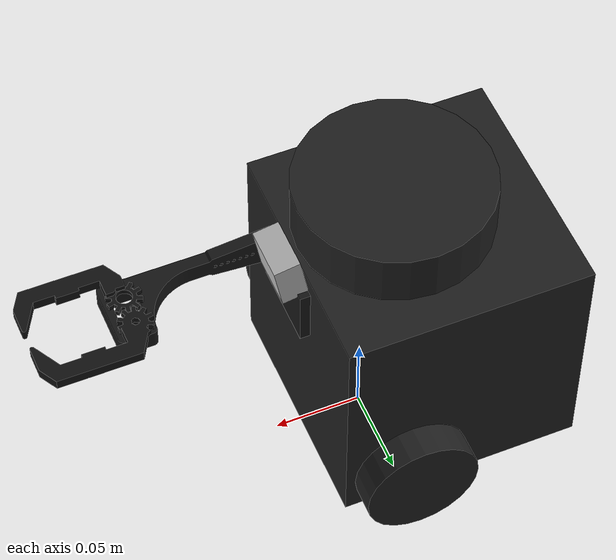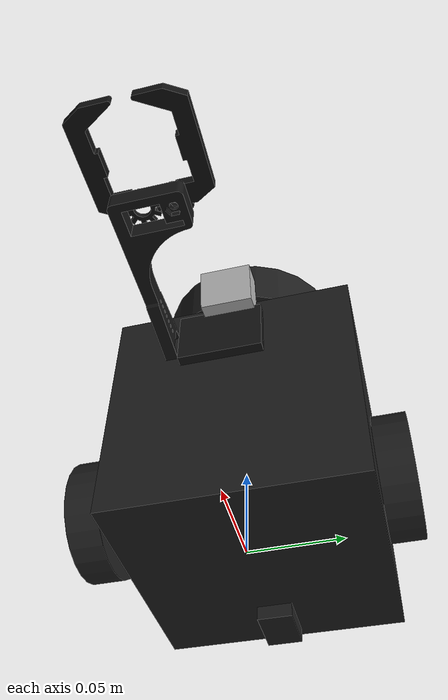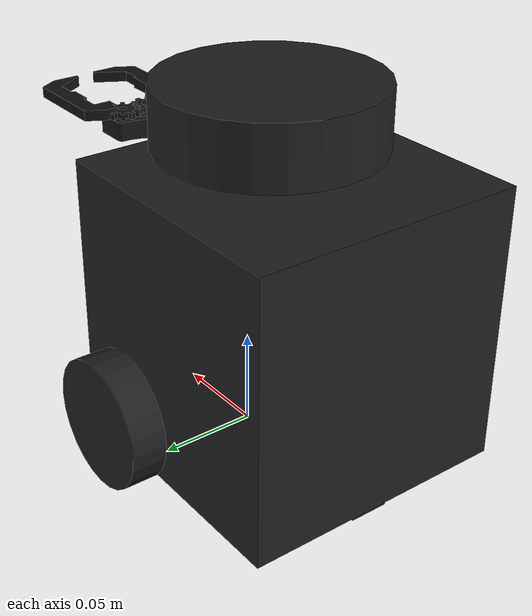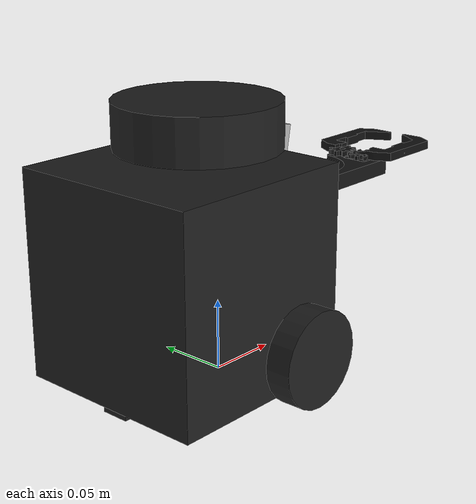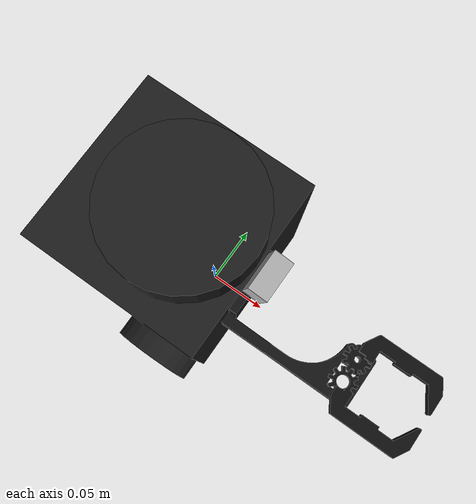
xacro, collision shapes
<?xml version="1.0" ?>
<robot name="mybot" xmlns:xacro="http://ros.org/wiki/xacro">
  <xacro:include filename="$(find mybot_description)/urdf/common_properties.xacro"/>
  <xacro:include filename="$(find mybot_description)/urdf/mybot.gazebo.xacro"/>

 <xacro:property name="width" value="0.2" />
  <xacro:property name="leglen" value="0.6" />
  <xacro:property name="polelen" value="0.2" />
  <xacro:property name="bodylen" value="0.6" />
  <xacro:property name="baselen" value="0.4" />
  <xacro:property name="wheeldiam" value="0.07" />
  <xacro:property name="pi" value="3.1415" />
  <xacro:property name="z" value="0.085" />

  <xacro:macro name="default_inertial" params="mass">
    <inertial>
      <mass value="${mass}" />
      <inertia ixx="1.0" ixy="0.0" ixz="0.0" iyy="1.0" iyz="0.0" izz="1.0" />
    </inertial>
  </xacro:macro>

  <link name="base_footprint"/>

  <joint name="base_joint" type="fixed">
    <parent link="base_footprint"/>
    <child link="base_link"/>
    <origin xyz="0.0 0.0 0.010" rpy="0 0 0"/>
  </joint>

  <link name="base_link">
    <visual>
      <origin xyz="-0.032 0 0.0" rpy="0 0 0"/>
      <geometry>
        <mesh filename="package://mybot_description/meshes/bases/burger_base.stl" scale="0.001 0.001 0.001"/>
      </geometry>
      <material name="light_black"/>
    </visual>

    <collision>
      <origin xyz="-0.032 0 0.070" rpy="0 0 0"/>
      <geometry>
        <box size="0.140 0.140 0.143"/>
      </geometry>
    </collision>

    <inertial>
      <origin xyz="0 0 0" rpy="0 0 0"/>
      <mass value="8.2573504e-01"/>
      <inertia ixx="2.2124416e-03" ixy="-1.2294101e-05" ixz="3.4938785e-05"
               iyy="2.1193702e-03" iyz="-5.0120904e-06"
               izz="2.0064271e-03" />
    </inertial>
  </link>

  <joint name="wheel_left_joint" type="continuous">
    <parent link="base_link"/>
    <child link="wheel_left_link"/>
    <origin xyz="0.0 0.08 0.023" rpy="-1.57 0 0"/>
    <axis xyz="0 0 1"/>
  </joint>

  <link name="wheel_left_link">
    <visual>
      <origin xyz="0 0 0" rpy="1.57 0 0"/>
      <geometry>
        <mesh filename="package://mybot_description/meshes/wheels/left_tire.stl" scale="0.001 0.001 0.001"/>
      </geometry>
      <material name="dark"/>
    </visual>

    <collision>
      <origin xyz="0 0 0" rpy="0 0 0"/>
      <geometry>
        <cylinder length="0.018" radius="0.033"/>
      </geometry>
    </collision>

    <inertial>
      <origin xyz="0 0 0" />
      <mass value="2.8498940e-02" />
      <inertia ixx="1.1175580e-05" ixy="-4.2369783e-11" ixz="-5.9381719e-09"
               iyy="1.1192413e-05" iyz="-1.4400107e-11"
               izz="2.0712558e-05" />
      </inertial>
  </link>

  <joint name="wheel_right_joint" type="continuous">
    <parent link="base_link"/>
    <child link="wheel_right_link"/>
    <origin xyz="0.0 -0.080 0.023" rpy="-1.57 0 0"/>
    <axis xyz="0 0 1"/>
  </joint>

  <link name="wheel_right_link">
    <visual>
      <origin xyz="0 0 0" rpy="1.57 0 0"/>
      <geometry>
        <mesh filename="package://mybot_description/meshes/wheels/right_tire.stl" scale="0.001 0.001 0.001"/>
      </geometry>
      <material name="dark"/>
    </visual>

    <collision>
      <origin xyz="0 0 0" rpy="0 0 0"/>
      <geometry>
        <cylinder length="0.018" radius="0.033"/>
      </geometry>
    </collision>

    <inertial>
      <origin xyz="0 0 0" />
      <mass value="2.8498940e-02" />
      <inertia ixx="1.1175580e-05" ixy="-4.2369783e-11" ixz="-5.9381719e-09"
               iyy="1.1192413e-05" iyz="-1.4400107e-11"
               izz="2.0712558e-05" />
      </inertial>
  </link>

  <joint name="caster_back_joint" type="fixed">
    <parent link="base_link"/>
    <child link="caster_back_link"/>
    <origin xyz="-0.081 0 -0.004" rpy="-1.57 0 0"/>
  </joint>

  <link name="caster_back_link">
    <collision>
      <origin xyz="0 0.001 0" rpy="0 0 0"/>
      <geometry>
        <box size="0.030 0.009 0.020"/>
      </geometry>
    </collision>

    <inertial>
      <origin xyz="0 0 0" />
      <mass value="0.005" />
      <inertia ixx="0.001" ixy="0.0" ixz="0.0"
               iyy="0.001" iyz="0.0"
               izz="0.001" />
    </inertial>
  </link>

  <joint name="imu_joint" type="fixed">
    <parent link="base_link"/>
    <child link="imu_link"/>
    <origin xyz="-0.032 0 0.068" rpy="0 0 0"/>
  </joint>

  <link name="imu_link"/>

  <joint name="scan_joint" type="fixed">
    <parent link="base_link"/>
    <child link="base_scan"/>
    <origin xyz="-0.032 0 0.172" rpy="0 0 0"/>
  </joint>

  <link name="base_scan">
    <visual>
      <origin xyz="0 0 0.0" rpy="0 0 0"/>
      <geometry>
        <mesh filename="package://mybot_description/meshes/sensors/lds.stl" scale="0.001 0.001 0.001"/>
      </geometry>
      <material name="dark"/>
    </visual>

    <collision>
      <origin xyz="0.015 0 -0.0065" rpy="0 0 0"/>
      <geometry>
        <cylinder length="0.0315" radius="0.055"/>
      </geometry>
    </collision>

    <inertial>
      <mass value="0.114" />
      <origin xyz="0 0 0" />
      <inertia ixx="0.001" ixy="0.0" ixz="0.0"
               iyy="0.001" iyz="0.0"
               izz="0.001" />
    </inertial>
  </link>

  <joint name="camera_joint" type="fixed">
    <origin xyz="0.040 -0.011 0.130" rpy="0 0.174 0"/>
    <parent link="base_link"/>
    <child link="camera_link"/>
  </joint>

  <link name="camera_link">
    <collision>
      <origin xyz="0.005 0.011 0.013" rpy="0 0 0"/>
      <geometry>
        <box size="0.015 0.030 0.027"/>
      </geometry>
    </collision>
  </link>

  <joint name="camera_rgb_joint" type="fixed">
    <origin xyz="0.003 0.011 0.009" rpy="0 0 0"/>
    <parent link="camera_link"/>
    <child link="camera_rgb_frame"/>
  </joint>
  <link name="camera_rgb_frame"/>

  <joint name="camera_rgb_optical_joint" type="fixed">
    <origin xyz="0 0 0" rpy="-1.57 0 -1.57"/>
    <parent link="camera_rgb_frame"/>
    <child link="camera_rgb_optical_frame"/>
  </joint>
  <link name="camera_rgb_optical_frame"/>

 <joint name="gripper_extension" type="revolute">
   <axis xyz="0 0 1"/>
    <limit effort="1000.0" lower="-1" upper="1" velocity="0.5"/>
    <parent link="base_link"/>
    <child link="gripper_pole"/>
    <limit effort="1000.0" lower="-0.38" upper="0" velocity="0.5"/>
      <origin rpy="0 0 0 " xyz="0 0 0"/>
  </joint>

  <link name="gripper_pole">
    <visual>
      <geometry>
        <mesh filename="package://mybot_description/meshes/sensors/arm.dae"/>
      </geometry>
      <origin rpy="0 0 0 " xyz="0 0 0"/>
    </visual>
    <collision>
      <geometry>
        <mesh filename="package://mybot_description/meshes/sensors/arm.dae"/>
      </geometry>
      <origin rpy="0 0 0 " xyz="0 0 0"/>
    </collision>
    <inertial>
      <mass value="0.00125"/>
      <inertia ixx="1.0" ixy="0.0" ixz="0.0" iyy="1.0" iyz="0.0" izz="1.0"/>
    </inertial>
  </link>

  <transmission name="gripper_extension_trans" type="SimpleTransmission">
    <type>transmission_interface/SimpleTransmission</type>
    <actuator name="gripper_extension_motor">
      <mechanicalReduction>1</mechanicalReduction>
    </actuator>
    <joint name="gripper_extension">
      <hardwareInterface>PositionJointInterface</hardwareInterface>
    </joint>
  </transmission>

  <joint name="left_gripper_joint" type="revolute">
    <axis xyz="0 0 1"/>
    <limit effort="1000.0" lower="0.0" upper="0.548" velocity="0.5"/>
      <origin rpy="0 0 0 " xyz="0 0 0"/>
    <parent link="gripper_pole"/>
    <child link="left_gripper"/>
  </joint>

  <link name="left_gripper">
    <visual>
    <origin rpy="0 0 0" xyz="0 0 0"/>
      <geometry>
        <mesh filename="package://mybot_description/meshes/sensors/esquerda.dae"/>
      </geometry>
    </visual>
    <collision>
      <geometry>
        <mesh filename="package://mybot_description/meshes/sensors/esquerda.dae"/>
      </geometry>
      <origin rpy="0 0 0 " xyz="0 0 0"/>
    </collision>
    <inertial>
      <mass value="0.000625"/>
      <inertia ixx="1.0" ixy="0.0" ixz="0.0" iyy="1.0" iyz="0.0" izz="1.0"/>
    </inertial>
  </link>

    <transmission name="left_gripper_trans">
      <type>transmission_interface/SimpleTransmission</type>
      <actuator name="left_gripper_motor">
        <mechanicalReduction>1</mechanicalReduction>
      </actuator>
      <joint name="left_gripper_joint">
        <hardwareInterface>PositionJointInterface</hardwareInterface>
      </joint>
    </transmission>

  <joint name="right_gripper_joint" type="revolute">
    <axis xyz="0 0 -1"/>
    <limit effort="1000.0" lower="0.0" upper="0.548" velocity="0.5"/>
      <origin rpy="0 0 0 " xyz="0 0 0"/>
    <parent link="gripper_pole"/>
    <child link="right_gripper"/>
  </joint>

  <link name="right_gripper">
    <visual>
      <origin rpy="0 0 0 " xyz="0 0 0"/>
      <geometry>
        <mesh filename="package://mybot_description/meshes/sensors/direita.dae"/>
      </geometry>
    </visual>
    <collision>
      <geometry>
        <mesh filename="package://mybot_description/meshes/sensors/direita.dae"/>
      </geometry>
      <origin rpy="0 0 0 " xyz="0 0 0"/>
    </collision>
    <inertial>
      <mass value="0.000625"/>
      <inertia ixx="1.0" ixy="0.0" ixz="0.0" iyy="1.0" iyz="0.0" izz="1.0"/>
    </inertial>
  </link>

      <transmission name="right_gripper_trans">
      <type>transmission_interface/SimpleTransmission</type>
      <actuator name="right_gripper_motor">
        <mechanicalReduction>1</mechanicalReduction>
      </actuator>
      <joint name="right_gripper_joint">
        <hardwareInterface>PositionJointInterface</hardwareInterface>
      </joint>
    </transmission>

     <gazebo>
    <plugin name="gazebo_ros_control" filename="libgazebo_ros_control.so">
      <robotNamespace>/</robotNamespace>
    </plugin>
  </gazebo>
</robot>
